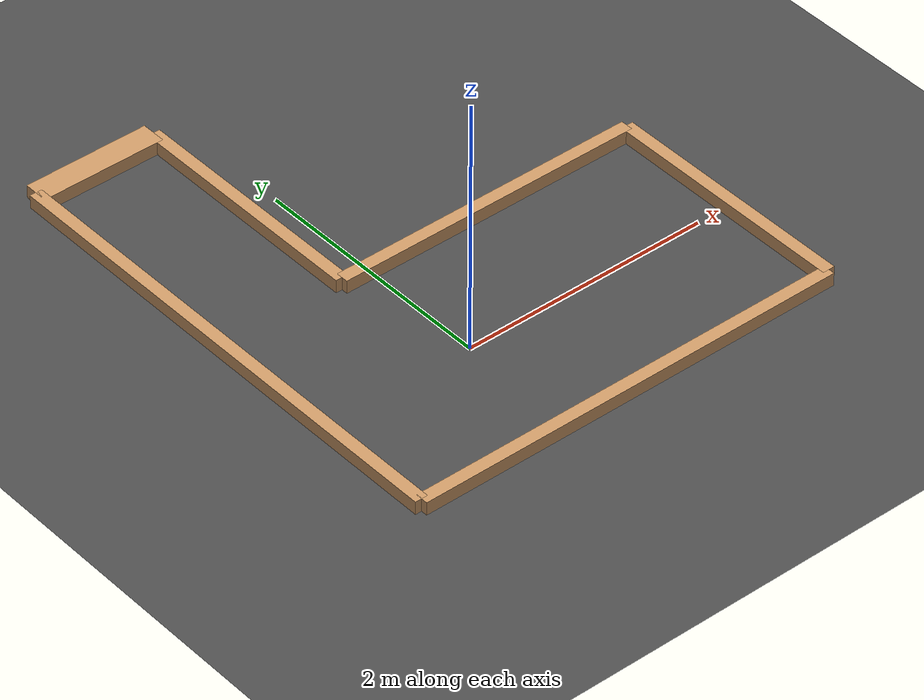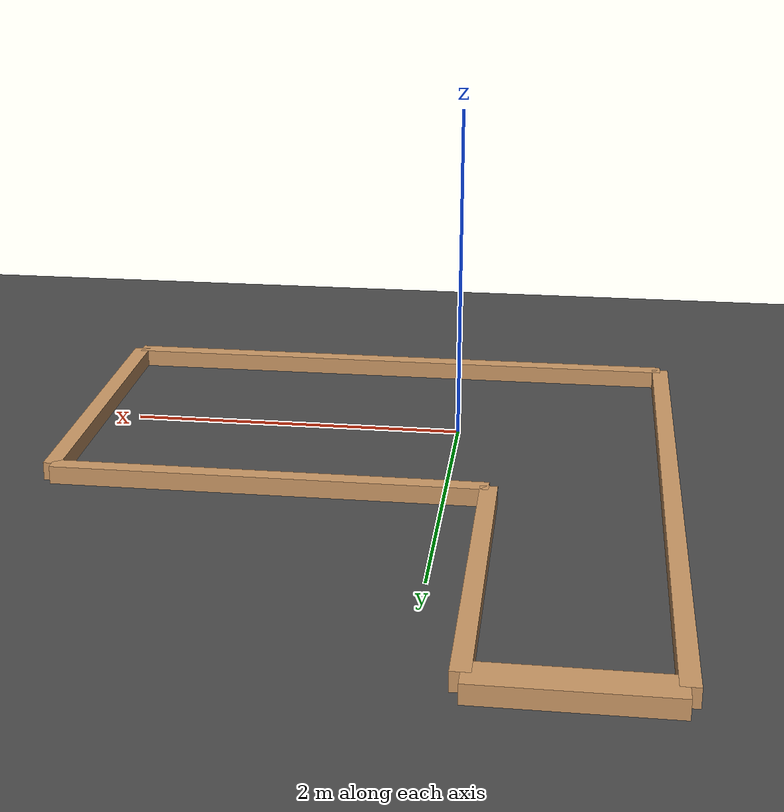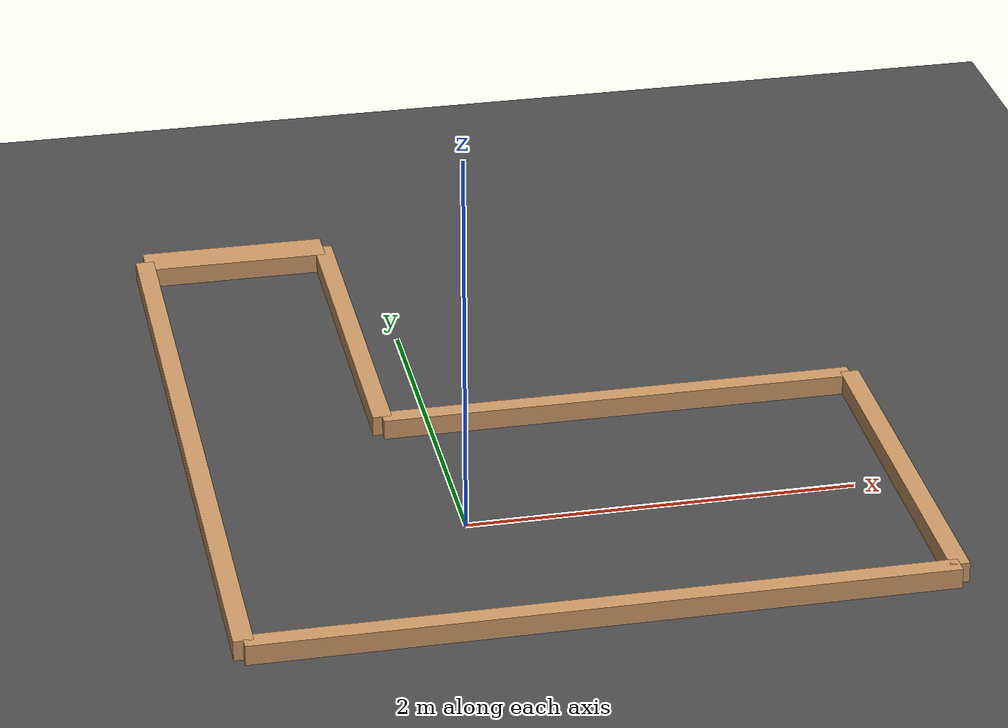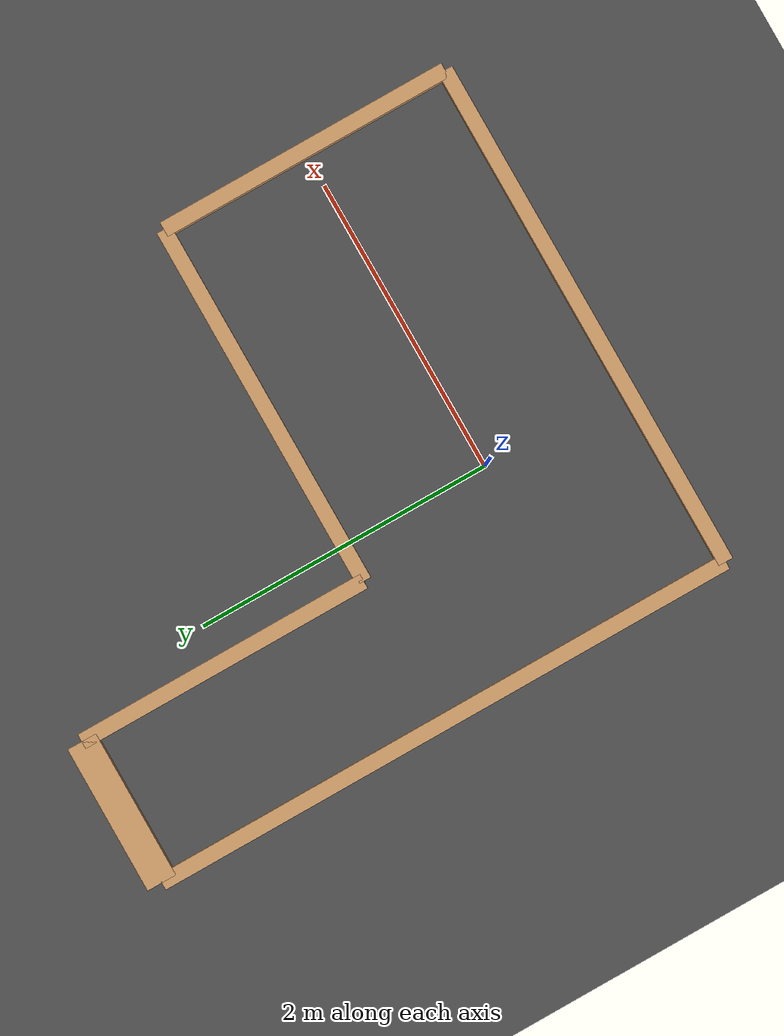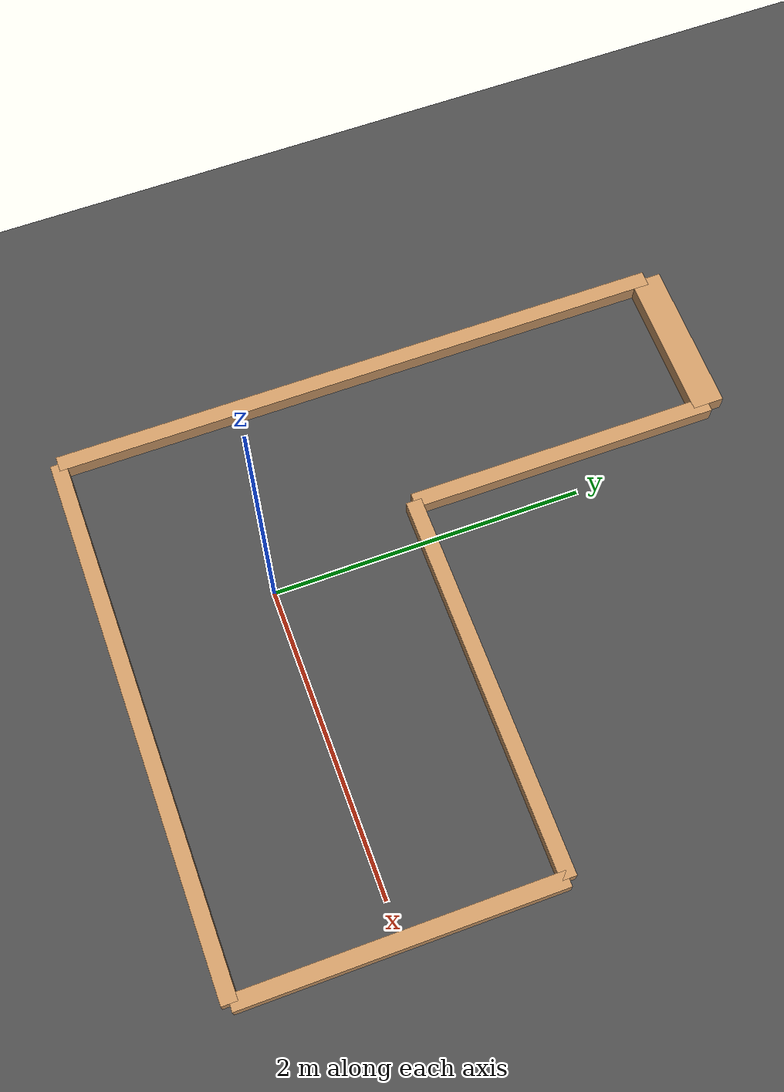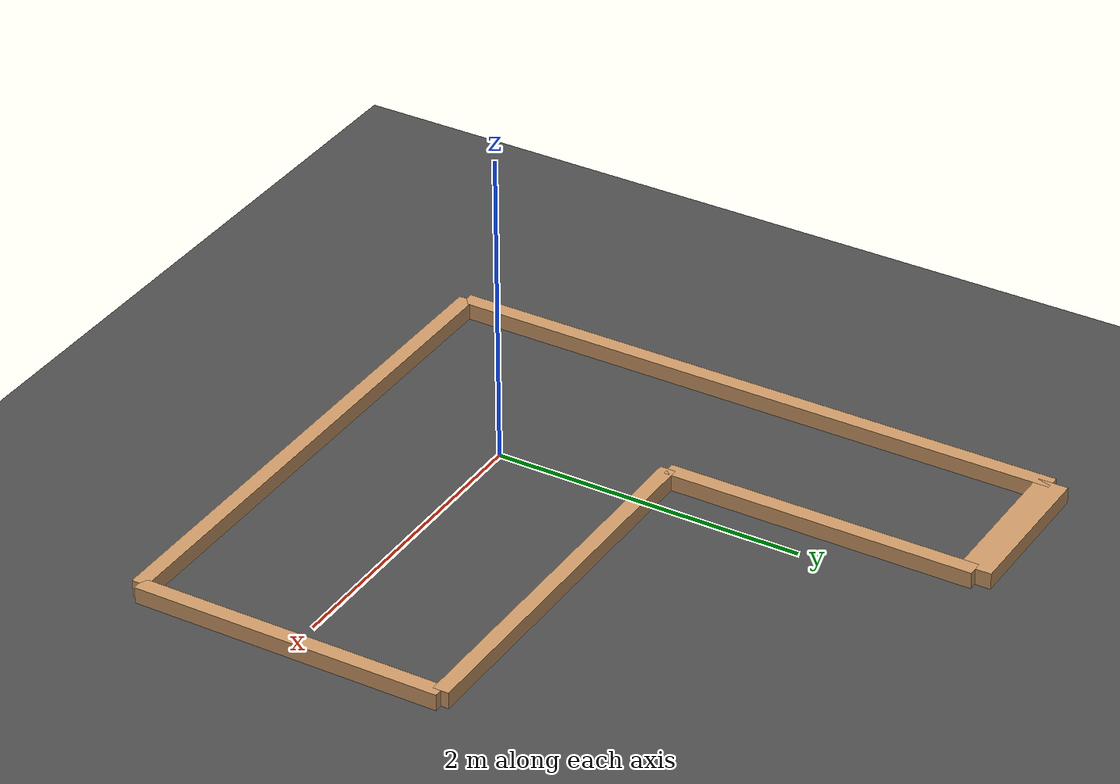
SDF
<?xml version="1.0" ?>
<sdf version="1.9">
  <world name="demo_environment">

    <physics name='1ms' type='ignored'>
      <max_step_size>0.001</max_step_size>
      <real_time_factor>1</real_time_factor>
      <real_time_update_rate>1000</real_time_update_rate>
    </physics>
    <plugin filename="libignition-gazebo-clock-system.so"
            name="ignition::gazebo::systems::Clock">
        <use_sim_time>true</use_sim_time>
        <time_scaling_factor>1.0</time_scaling_factor>
    </plugin>
    <plugin
        filename="libignition-gazebo-physics-system.so"
        name="ignition::gazebo::systems::Physics">
    </plugin>
    <plugin
        filename="libignition-gazebo-user-commands-system.so"
        name="ignition::gazebo::systems::UserCommands">
    </plugin>
    <plugin
        filename="libignition-gazebo-scene-broadcaster-system.so"
        name="ignition::gazebo::systems::SceneBroadcaster">
    </plugin>

    <!-- Scene Settings -->
    <scene>
      <ambient>0.4 0.4 0.4 1.0</ambient>
      <background>0.7 0.7 0.7 1.0</background>
      <shadows>true</shadows>
      <grid>false</grid>
    </scene>

    <!-- Ground Plane (reduced to 5x5m) -->
    <model name="ground_plane">
      <static>true</static>
      <link name="ground_link">
        <collision name="ground_collision">
          <geometry>
            <plane>
              <normal>0 0 1</normal>
              <size>15 15</size>
            </plane>
          </geometry>
          <surface>
            <friction>
              <ode>
                <mu>100</mu>
                <mu2>50</mu2>
              </ode>
            </friction>
          </surface>
        </collision>
        <visual name="ground_visual">
          <geometry>
            <plane>
              <normal>0 0 1</normal>
              <size>15 15</size>
            </plane>
          </geometry>
          <material>
            <ambient>0.3 0.3 0.3 1</ambient>
            <diffuse>0.3 0.3 0.3 1</diffuse>
            <specular>0.1 0.1 0.1 1</specular>
          </material>
        </visual>
      </link>
    </model>

    <!-- Wall 1 (Vertical) -->
    <model name="wall_1">
      <static>true</static>
      <pose>2.25 -0.0 0.0 0 0 0</pose>
      <link name="wall_link">
        <collision name="wall_collision">
          <geometry>
            <box>
              <size>0.1 2.0 0.2</size>
            </box>
          </geometry>
        </collision>
        <visual name="wall_visual">
          <geometry>
            <box>
              <size>0.1 2.0 0.2</size>
            </box>
          </geometry>
          <material>
            <ambient>0.8 0.6 0.4 1</ambient>
            <diffuse>0.8 0.6 0.4 1</diffuse>
            <specular>0.3 0.2 0.1 1</specular>
          </material>
        </visual>
      </link>
    </model>

    <model name="wall_2">
      <static>true</static>
      <pose>1.0 1.0 0.0 0 0 0</pose>
      <link name="wall_link">
        <collision name="wall_collision">
          <geometry>
            <box>
              <size>2.5 0.1 0.2</size>
            </box>
          </geometry>
        </collision>
        <visual name="wall_visual">
          <geometry>
            <box>
              <size>2.5 0.1 0.2</size>
            </box>
          </geometry>
          <material>
            <ambient>0.8 0.6 0.4 1</ambient>
            <diffuse>0.8 0.6 0.4 1</diffuse>
            <specular>0.3 0.2 0.1 1</specular>
          </material>
        </visual>
      </link>
    </model>

    <model name="wall_3">
      <static>true</static>
      <pose>0.5 -1.0 0.0 0 0 0</pose>
      <link name="wall_link">
        <collision name="wall_collision">
          <geometry>
            <box>
              <size>3.5 0.1 0.2</size>
            </box>
          </geometry>
        </collision>
        <visual name="wall_visual">
          <geometry>
            <box>
              <size>3.5 0.1 0.2</size>
            </box>
          </geometry>
          <material>
            <ambient>0.8 0.6 0.4 1</ambient>
            <diffuse>0.8 0.6 0.4 1</diffuse>
            <specular>0.3 0.2 0.1 1</specular>
          </material>
        </visual>
      </link>
    </model>

    <model name="wall_4">
      <static>true</static>
      <pose>-1.25 1.0 0.0 0 0 0</pose>
      <link name="wall_link">
        <collision name="wall_collision">
          <geometry>
            <box>
              <size>0.1 4.0 0.2</size>
            </box>
          </geometry>
        </collision>
        <visual name="wall_visual">
          <geometry>
            <box>
              <size>0.1 4.0 0.2</size>
            </box>
          </geometry>
          <material>
            <ambient>0.8 0.6 0.4 1</ambient>
            <diffuse>0.8 0.6 0.4 1</diffuse>
            <specular>0.3 0.2 0.1 1</specular>
          </material>
        </visual>
      </link>
    </model>

    <model name="wall_5">
      <static>true</static>
      <pose>-0.75 3.0 0.0 0 0 0</pose>
      <link name="wall_link">
        <collision name="wall_collision">
          <geometry>
            <box>
              <size>1.0 0.2 0.2</size>
            </box>
          </geometry>
        </collision>
        <visual name="wall_visual">
          <geometry>
            <box>
              <size>1.0 0.2 0.2</size>
            </box>
          </geometry>
          <material>
            <ambient>0.8 0.6 0.4 1</ambient>
            <diffuse>0.8 0.6 0.4 1</diffuse>
            <specular>0.3 0.2 0.1 1</specular>
          </material>
        </visual>
      </link>
    </model>

    <model name="wall_6">
      <static>true</static>
      <pose>-0.25 2.0 0.0 0 0 0</pose>
      <link name="wall_link">
        <collision name="wall_collision">
          <geometry>
            <box>
              <size>0.1 2.0 0.2</size>
            </box>
          </geometry>
        </collision>
        <visual name="wall_visual">
          <geometry>
            <box>
              <size>0.1 2.0 0.2</size>
            </box>
          </geometry>
          <material>
            <ambient>0.8 0.6 0.4 1</ambient>
            <diffuse>0.8 0.6 0.4 1</diffuse>
            <specular>0.3 0.2 0.1 1</specular>
          </material>
        </visual>
      </link>
    </model>

    <!-- Lighting -->
    <light name="sun" type="directional">
      <cast_shadows>true</cast_shadows>
      <pose>0 0 10 0 0 0</pose>
      <diffuse>0.8 0.8 0.8 1</diffuse>
      <specular>0.3 0.3 0.3 1</specular>
      <attenuation>
        <range>1000</range>
        <constant>0.9</constant>
        <linear>0.01</linear>
        <quadratic>0.001</quadratic>
      </attenuation>
      <direction>-0.5 0.1 -0.9</direction>
    </light>

    <!-- Additional Point Light -->
    <light name="point_light_1" type="point">
      <pose>0 0 3 0 0 0</pose>
      <diffuse>0.9 0.9 0.7 1</diffuse>
      <specular>0.9 0.9 0.7 1</specular>
      <attenuation>
        <range>8</range>
        <constant>0.5</constant>
        <linear>0.3</linear>
        <quadratic>0.01</quadratic>
      </attenuation>
    </light>

    <!-- GUI Plugin -->
    <plugin filename="GzScene3D" name="3D View">
      <ignition-gui>
        <title>3D View</title>
        <property type="bool" key="showTitleBar">false</property>
        <property type="string" key="state">docked</property>
      </ignition-gui>
      <engine>ogre2</engine>
      <scene>scene</scene>
      <ambient_light>0.4 0.4 0.4</ambient_light>
      <background_color>0.7 0.7 0.7</background_color>
      <camera_pose>0 0 5 0 1.57 3.14</camera_pose>
    </plugin>
  </world>
</sdf>
